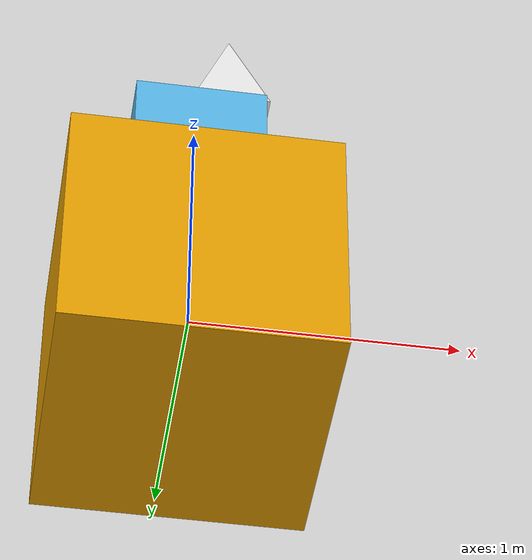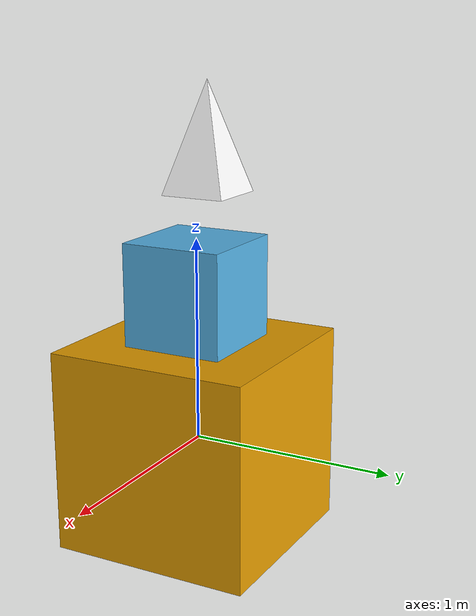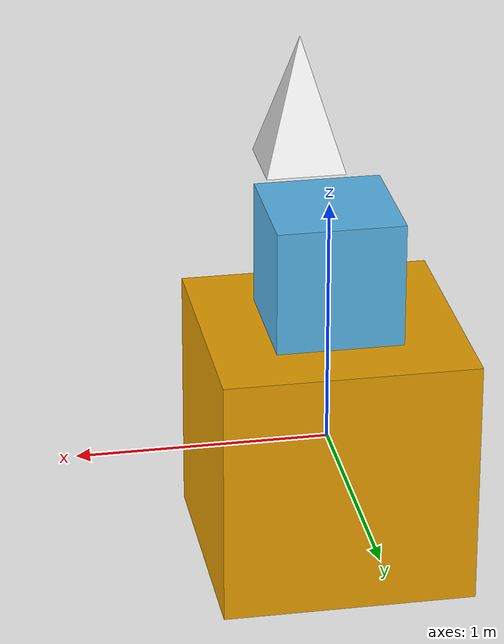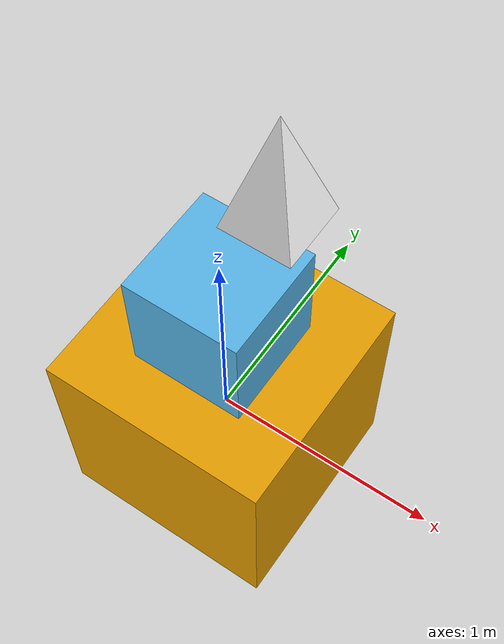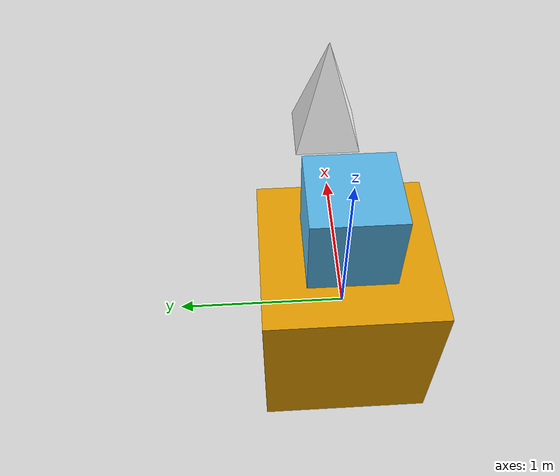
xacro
<?xml version="1.0"?>

<robot xmlns:xacro="http://www.ros.org/wiki/xacro"
       name="my_robot">

    <!-- XACRO PROPERTIES                                         -->

    <!-- Base link size -->
    <xacro:property name="base_size" value="1.0"/>

    <!-- Top link size -->
    <xacro:property name="top_size" value="0.5"/>

    <!-- End link collision size -->
    <xacro:property name="end_size" value="0.3"/>

    <!-- REUSABLE BOX LINK MACRO                                  -->

    <xacro:macro name="create_box_link"
                 params="link_name size">

        <link name="${link_name}">

            <!-- Visual -->
            <visual>

                <geometry>

                    <box size="${size} ${size} ${size}"/>

                </geometry>

            </visual>

            <!-- Collision -->
            <collision>

                <geometry>

                    <box size="${size} ${size} ${size}"/>

                </geometry>

            </collision>

        </link>

    </xacro:macro>

    <!-- BASE LINK                                                 -->

    <xacro:create_box_link
        link_name="base_link"
        size="${base_size}"/>

    <!-- TOP LINK                                                  -->

    <xacro:create_box_link
        link_name="top_link"
        size="${top_size}"/>

    <!-- END LINK                                                  -->

    <link name="end_link">

        <!-- Visual appearance of the end link -->
        <visual>

            <geometry>

                <mesh filename="package://robot/meshes/simple_pyramid.stl"/>

            </geometry>

            <!-- Color of the end link -->
            <material name="green">

                <color rgba="1 1 1 1"/>

            </material>

        </visual>

        <!-- Collision shape of the end link -->
        <collision>

            <geometry>

                <box size="${end_size} ${end_size} ${end_size}"/>

            </geometry>

        </collision>

    </link>

    <!-- BASE JOINT                                                -->

    <joint name="base_joint" type="revolute">

        <!--
            Base box height  = base_size
            Top box height   = top_size

            Joint position:
            half base height + half top height
        -->
        <origin
            xyz="0 0 ${base_size/2 + top_size/2}"
            rpy="0 0 0"/>

        <parent link="base_link"/>

        <child link="top_link"/>

        <axis xyz="0 1 0"/>

        <limit
            lower="-1.57"
            upper="1.57"
            effort="10"
            velocity="1"/>

    </joint>

    <!-- END JOINT                                                 -->

    <joint name="end_joint" type="revolute">

        <!-- Position of end link relative to top link -->
        <origin
            xyz="0 0 ${top_size}"
            rpy="0 0 0"/>

        <parent link="top_link"/>

        <child link="end_link"/>

        <axis xyz="0 1 0"/>

        <limit
            lower="-1.57"
            upper="1.57"
            effort="10"
            velocity="1"/>

    </joint>

</robot>
